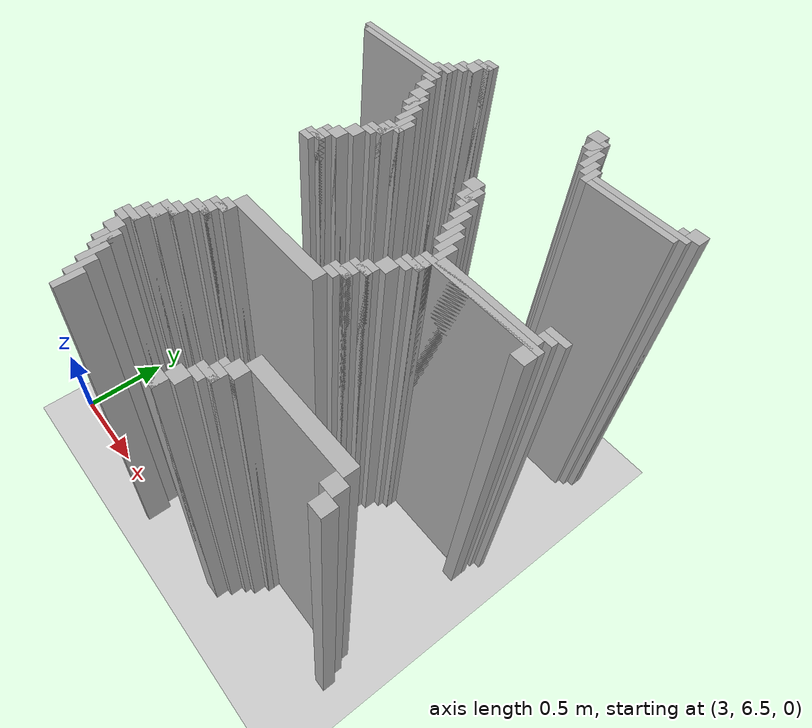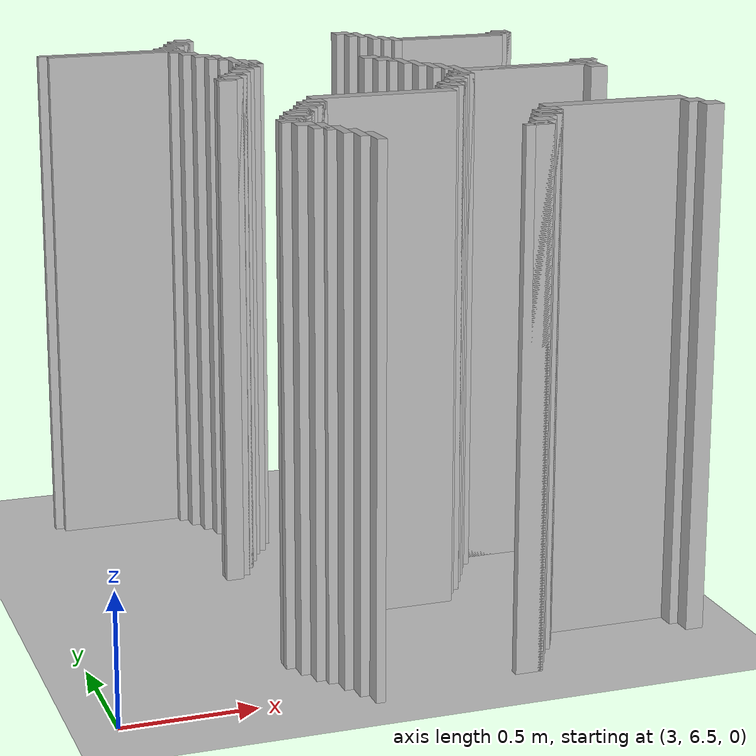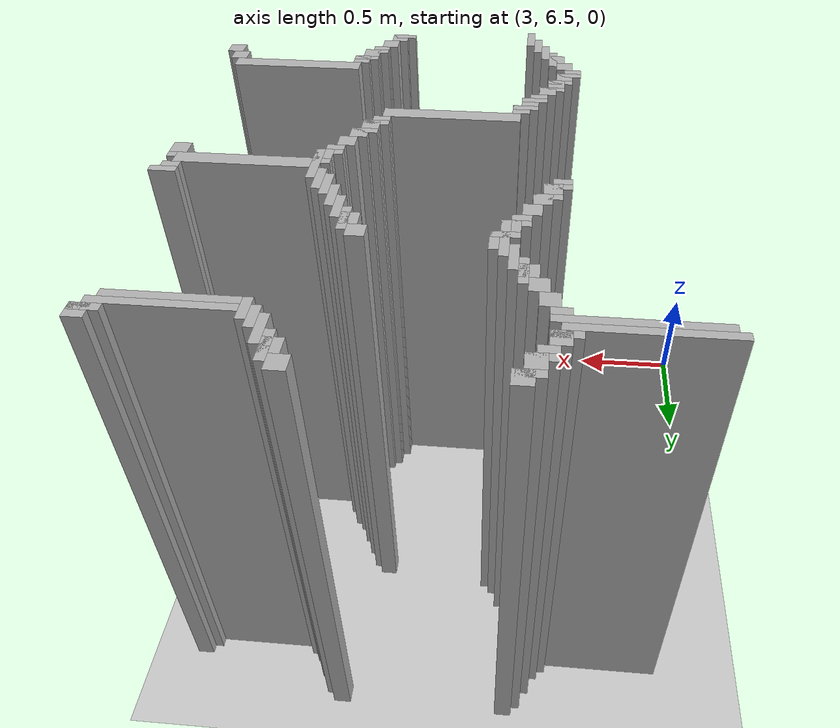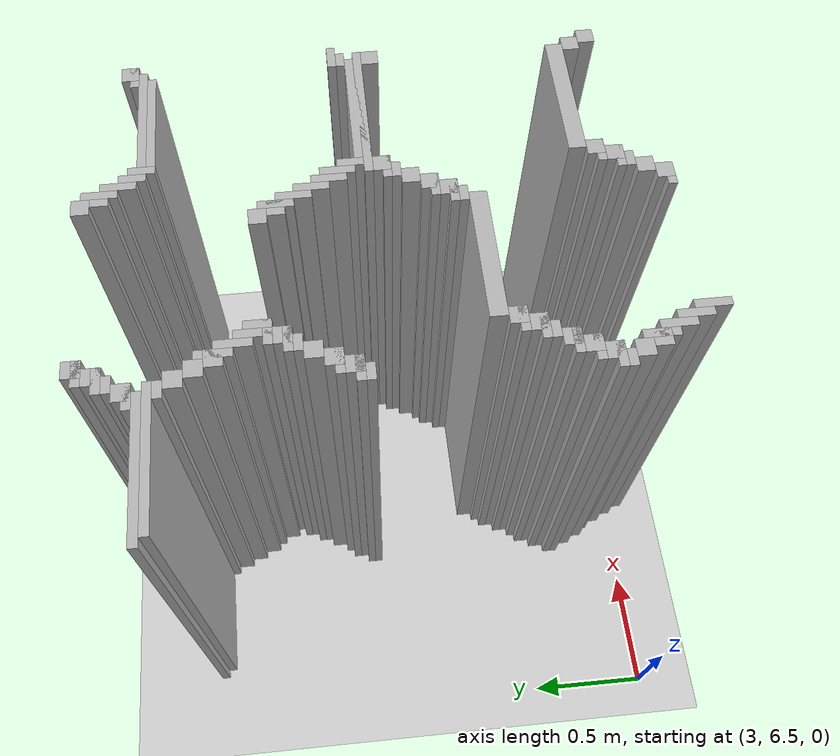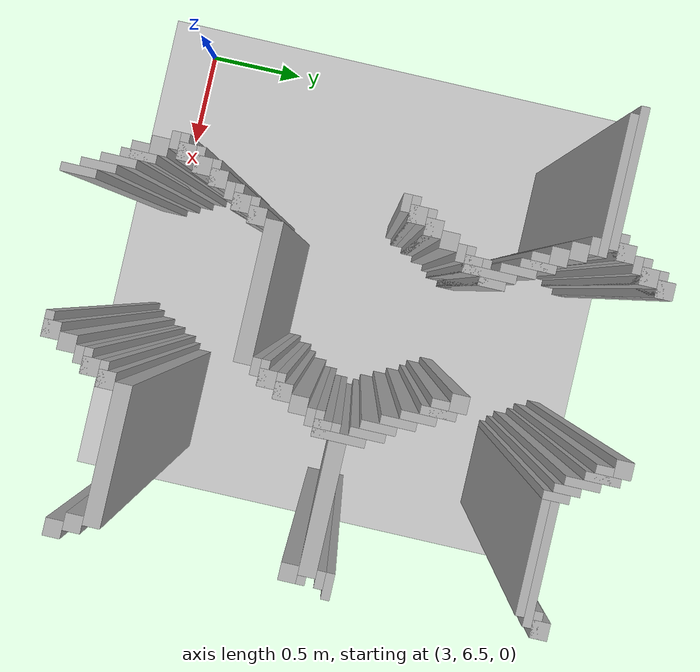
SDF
<sdf version="1.6">
 <world name="slam_world">
  <model name="ground_plane">
   <static>true</static>
   <link name="link">
    <collision name="collision">
     <geometry><plane><normal>0 0 1</normal><size>100 100</size></plane></geometry>
    </collision>
    <visual name="visual">
     <geometry><plane><normal>0 0 1</normal><size>100 100</size></plane></geometry>
     <material>
      <ambient>0.8 0.8 0.8 1</ambient>
      <diffuse>0.8 0.8 0.8 1</diffuse>
      <specular>0.8 0.8 0.8 1</specular>
     </material>
    </visual>
   </link>
  </model>
  <model name="wall_2924">
   <static>true</static>
   <pose>3.863109048723898 8.735498839907192 1.0 0 0 0</pose>
   <link name="link">
    <collision name="collision">
     <geometry><box><size>0.06960556844547564 0.06960556844547564 2.0</size></box></geometry>
    </collision>
    <visual name="visual">
     <geometry><box><size>0.06960556844547564 0.06960556844547564 2.0</size></box></geometry>
     <material><ambient>0.5 0.5 0.5 1</ambient><diffuse>0.7 0.7 0.7 1</diffuse></material>
    </visual>
   </link>
  </model>
  <model name="wall_2925">
   <static>true</static>
   <pose>4.559164733178654 8.735498839907192 1.0 0 0 0</pose>
   <link name="link">
    <collision name="collision">
     <geometry><box><size>0.06960556844547564 0.06960556844547564 2.0</size></box></geometry>
    </collision>
    <visual name="visual">
     <geometry><box><size>0.06960556844547564 0.06960556844547564 2.0</size></box></geometry>
     <material><ambient>0.5 0.5 0.5 1</ambient><diffuse>0.7 0.7 0.7 1</diffuse></material>
    </visual>
   </link>
  </model>
  <model name="wall_2939">
   <static>true</static>
   <pose>3.845707656612529 8.718097447795824 1.0 0 0 0</pose>
   <link name="link">
    <collision name="collision">
     <geometry><box><size>0.10440835266821345 0.03480278422273782 2.0</size></box></geometry>
    </collision>
    <visual name="visual">
     <geometry><box><size>0.10440835266821345 0.03480278422273782 2.0</size></box></geometry>
     <material><ambient>0.5 0.5 0.5 1</ambient><diffuse>0.7 0.7 0.7 1</diffuse></material>
    </visual>
   </link>
  </model>
  <model name="wall_2940">
   <static>true</static>
   <pose>4.611368909512761 8.665893271461716 1.0 0 0 0</pose>
   <link name="link">
    <collision name="collision">
     <geometry><box><size>0.03480278422273782 0.13921113689095127 2.0</size></box></geometry>
    </collision>
    <visual name="visual">
     <geometry><box><size>0.03480278422273782 0.13921113689095127 2.0</size></box></geometry>
     <material><ambient>0.5 0.5 0.5 1</ambient><diffuse>0.7 0.7 0.7 1</diffuse></material>
    </visual>
   </link>
  </model>
  <model name="wall_2953">
   <static>true</static>
   <pose>3.82830626450116 8.665893271461716 1.0 0 0 0</pose>
   <link name="link">
    <collision name="collision">
     <geometry><box><size>0.06960556844547564 0.06960556844547564 2.0</size></box></geometry>
    </collision>
    <visual name="visual">
     <geometry><box><size>0.06960556844547564 0.06960556844547564 2.0</size></box></geometry>
     <material><ambient>0.5 0.5 0.5 1</ambient><diffuse>0.7 0.7 0.7 1</diffuse></material>
    </visual>
   </link>
  </model>
  <model name="wall_2954">
   <static>true</static>
   <pose>4.593967517401392 8.665893271461716 1.0 0 0 0</pose>
   <link name="link">
    <collision name="collision">
     <geometry><box><size>0.06960556844547564 0.06960556844547564 2.0</size></box></geometry>
    </collision>
    <visual name="visual">
     <geometry><box><size>0.06960556844547564 0.06960556844547564 2.0</size></box></geometry>
     <material><ambient>0.5 0.5 0.5 1</ambient><diffuse>0.7 0.7 0.7 1</diffuse></material>
    </visual>
   </link>
  </model>
  <model name="wall_2964">
   <static>true</static>
   <pose>3.810904872389791 8.648491879350347 1.0 0 0 0</pose>
   <link name="link">
    <collision name="collision">
     <geometry><box><size>0.10440835266821345 0.03480278422273782 2.0</size></box></geometry>
    </collision>
    <visual name="visual">
     <geometry><box><size>0.10440835266821345 0.03480278422273782 2.0</size></box></geometry>
     <material><ambient>0.5 0.5 0.5 1</ambient><diffuse>0.7 0.7 0.7 1</diffuse></material>
    </visual>
   </link>
  </model>
  <model name="wall_2965">
   <static>true</static>
   <pose>4.646171693735498 8.596287703016241 1.0 0 0 0</pose>
   <link name="link">
    <collision name="collision">
     <geometry><box><size>0.03480278422273782 0.13921113689095127 2.0</size></box></geometry>
    </collision>
    <visual name="visual">
     <geometry><box><size>0.03480278422273782 0.13921113689095127 2.0</size></box></geometry>
     <material><ambient>0.5 0.5 0.5 1</ambient><diffuse>0.7 0.7 0.7 1</diffuse></material>
    </visual>
   </link>
  </model>
  <model name="wall_2978">
   <static>true</static>
   <pose>3.793503480278422 8.61368909512761 1.0 0 0 0</pose>
   <link name="link">
    <collision name="collision">
     <geometry><box><size>0.06960556844547564 0.03480278422273782 2.0</size></box></geometry>
    </collision>
    <visual name="visual">
     <geometry><box><size>0.06960556844547564 0.03480278422273782 2.0</size></box></geometry>
     <material><ambient>0.5 0.5 0.5 1</ambient><diffuse>0.7 0.7 0.7 1</diffuse></material>
    </visual>
   </link>
  </model>
  <model name="wall_2988">
   <static>true</static>
   <pose>3.7587006960556844 8.561484918793504 1.0 0 0 0</pose>
   <link name="link">
    <collision name="collision">
     <geometry><box><size>0.06960556844547564 0.06960556844547564 2.0</size></box></geometry>
    </collision>
    <visual name="visual">
     <geometry><box><size>0.06960556844547564 0.06960556844547564 2.0</size></box></geometry>
     <material><ambient>0.5 0.5 0.5 1</ambient><diffuse>0.7 0.7 0.7 1</diffuse></material>
    </visual>
   </link>
  </model>
  <model name="wall_2989">
   <static>true</static>
   <pose>4.6809744779582365 8.544083526682135 1.0 0 0 0</pose>
   <link name="link">
    <collision name="collision">
     <geometry><box><size>0.03480278422273782 0.10440835266821345 2.0</size></box></geometry>
    </collision>
    <visual name="visual">
     <geometry><box><size>0.03480278422273782 0.10440835266821345 2.0</size></box></geometry>
     <material><ambient>0.5 0.5 0.5 1</ambient><diffuse>0.7 0.7 0.7 1</diffuse></material>
    </visual>
   </link>
  </model>
  <model name="wall_2990">
   <static>true</static>
   <pose>5.220417633410673 8.561484918793504 1.0 0 0 0</pose>
   <link name="link">
    <collision name="collision">
     <geometry><box><size>0.06960556844547564 0.06960556844547564 2.0</size></box></geometry>
    </collision>
    <visual name="visual">
     <geometry><box><size>0.06960556844547564 0.06960556844547564 2.0</size></box></geometry>
     <material><ambient>0.5 0.5 0.5 1</ambient><diffuse>0.7 0.7 0.7 1</diffuse></material>
    </visual>
   </link>
  </model>
  <model name="wall_3003">
   <static>true</static>
   <pose>3.741299303944315 8.544083526682135 1.0 0 0 0</pose>
   <link name="link">
    <collision name="collision">
     <geometry><box><size>0.10440835266821345 0.03480278422273782 2.0</size></box></geometry>
    </collision>
    <visual name="visual">
     <geometry><box><size>0.10440835266821345 0.03480278422273782 2.0</size></box></geometry>
     <material><ambient>0.5 0.5 0.5 1</ambient><diffuse>0.7 0.7 0.7 1</diffuse></material>
    </visual>
   </link>
  </model>
  <model name="wall_3004">
   <static>true</static>
   <pose>4.715777262180974 8.509280742459396 1.0 0 0 0</pose>
   <link name="link">
    <collision name="collision">
     <geometry><box><size>0.03480278422273782 0.10440835266821345 2.0</size></box></geometry>
    </collision>
    <visual name="visual">
     <geometry><box><size>0.03480278422273782 0.10440835266821345 2.0</size></box></geometry>
     <material><ambient>0.5 0.5 0.5 1</ambient><diffuse>0.7 0.7 0.7 1</diffuse></material>
    </visual>
   </link>
  </model>
  <model name="wall_3005">
   <static>true</static>
   <pose>5.203016241299304 8.544083526682135 1.0 0 0 0</pose>
   <link name="link">
    <collision name="collision">
     <geometry><box><size>0.10440835266821345 0.03480278422273782 2.0</size></box></geometry>
    </collision>
    <visual name="visual">
     <geometry><box><size>0.10440835266821345 0.03480278422273782 2.0</size></box></geometry>
     <material><ambient>0.5 0.5 0.5 1</ambient><diffuse>0.7 0.7 0.7 1</diffuse></material>
    </visual>
   </link>
  </model>
  <model name="wall_3017">
   <static>true</static>
   <pose>3.480278422273782 8.509280742459396 1.0 0 0 0</pose>
   <link name="link">
    <collision name="collision">
     <geometry><box><size>0.5568445475638051 0.03480278422273782 2.0</size></box></geometry>
    </collision>
    <visual name="visual">
     <geometry><box><size>0.5568445475638051 0.03480278422273782 2.0</size></box></geometry>
     <material><ambient>0.5 0.5 0.5 1</ambient><diffuse>0.7 0.7 0.7 1</diffuse></material>
    </visual>
   </link>
  </model>
  <model name="wall_3018">
   <static>true</static>
   <pose>4.976798143851508 8.509280742459396 1.0 0 0 0</pose>
   <link name="link">
    <collision name="collision">
     <geometry><box><size>0.4872389791183295 0.03480278422273782 2.0</size></box></geometry>
    </collision>
    <visual name="visual">
     <geometry><box><size>0.4872389791183295 0.03480278422273782 2.0</size></box></geometry>
     <material><ambient>0.5 0.5 0.5 1</ambient><diffuse>0.7 0.7 0.7 1</diffuse></material>
    </visual>
   </link>
  </model>
  <model name="wall_3030">
   <static>true</static>
   <pose>3.51508120649652 8.474477958236658 1.0 0 0 0</pose>
   <link name="link">
    <collision name="collision">
     <geometry><box><size>0.5568445475638051 0.03480278422273782 2.0</size></box></geometry>
    </collision>
    <visual name="visual">
     <geometry><box><size>0.5568445475638051 0.03480278422273782 2.0</size></box></geometry>
     <material><ambient>0.5 0.5 0.5 1</ambient><diffuse>0.7 0.7 0.7 1</diffuse></material>
    </visual>
   </link>
  </model>
  <model name="wall_3031">
   <static>true</static>
   <pose>4.959396751740139 8.474477958236658 1.0 0 0 0</pose>
   <link name="link">
    <collision name="collision">
     <geometry><box><size>0.4524361948955916 0.03480278422273782 2.0</size></box></geometry>
    </collision>
    <visual name="visual">
     <geometry><box><size>0.4524361948955916 0.03480278422273782 2.0</size></box></geometry>
     <material><ambient>0.5 0.5 0.5 1</ambient><diffuse>0.7 0.7 0.7 1</diffuse></material>
    </visual>
   </link>
  </model>
  <model name="wall_3046">
   <static>true</static>
   <pose>3.7587006960556844 8.43967517401392 1.0 0 0 0</pose>
   <link name="link">
    <collision name="collision">
     <geometry><box><size>0.06960556844547564 0.03480278422273782 2.0</size></box></geometry>
    </collision>
    <visual name="visual">
     <geometry><box><size>0.06960556844547564 0.03480278422273782 2.0</size></box></geometry>
     <material><ambient>0.5 0.5 0.5 1</ambient><diffuse>0.7 0.7 0.7 1</diffuse></material>
    </visual>
   </link>
  </model>
  <model name="wall_3063">
   <static>true</static>
   <pose>3.793503480278422 8.387470997679815 1.0 0 0 0</pose>
   <link name="link">
    <collision name="collision">
     <geometry><box><size>0.06960556844547564 0.06960556844547564 2.0</size></box></geometry>
    </collision>
    <visual name="visual">
     <geometry><box><size>0.06960556844547564 0.06960556844547564 2.0</size></box></geometry>
     <material><ambient>0.5 0.5 0.5 1</ambient><diffuse>0.7 0.7 0.7 1</diffuse></material>
    </visual>
   </link>
  </model>
  <model name="wall_3080">
   <static>true</static>
   <pose>3.82830626450116 8.317865429234338 1.0 0 0 0</pose>
   <link name="link">
    <collision name="collision">
     <geometry><box><size>0.06960556844547564 0.06960556844547564 2.0</size></box></geometry>
    </collision>
    <visual name="visual">
     <geometry><box><size>0.06960556844547564 0.06960556844547564 2.0</size></box></geometry>
     <material><ambient>0.5 0.5 0.5 1</ambient><diffuse>0.7 0.7 0.7 1</diffuse></material>
    </visual>
   </link>
  </model>
  <model name="wall_3097">
   <static>true</static>
   <pose>3.8805104408352666 8.248259860788863 1.0 0 0 0</pose>
   <link name="link">
    <collision name="collision">
     <geometry><box><size>0.03480278422273782 0.13921113689095127 2.0</size></box></geometry>
    </collision>
    <visual name="visual">
     <geometry><box><size>0.03480278422273782 0.13921113689095127 2.0</size></box></geometry>
     <material><ambient>0.5 0.5 0.5 1</ambient><diffuse>0.7 0.7 0.7 1</diffuse></material>
    </visual>
   </link>
  </model>
  <model name="wall_3113">
   <static>true</static>
   <pose>3.863109048723898 8.248259860788863 1.0 0 0 0</pose>
   <link name="link">
    <collision name="collision">
     <geometry><box><size>0.06960556844547564 0.06960556844547564 2.0</size></box></geometry>
    </collision>
    <visual name="visual">
     <geometry><box><size>0.06960556844547564 0.06960556844547564 2.0</size></box></geometry>
     <material><ambient>0.5 0.5 0.5 1</ambient><diffuse>0.7 0.7 0.7 1</diffuse></material>
    </visual>
   </link>
  </model>
  <model name="wall_3127">
   <static>true</static>
   <pose>3.9153132250580045 8.178654292343387 1.0 0 0 0</pose>
   <link name="link">
    <collision name="collision">
     <geometry><box><size>0.03480278422273782 0.13921113689095127 2.0</size></box></geometry>
    </collision>
    <visual name="visual">
     <geometry><box><size>0.03480278422273782 0.13921113689095127 2.0</size></box></geometry>
     <material><ambient>0.5 0.5 0.5 1</ambient><diffuse>0.7 0.7 0.7 1</diffuse></material>
    </visual>
   </link>
  </model>
  <model name="wall_3153">
   <static>true</static>
   <pose>3.9501160092807424 8.074245939675174 1.0 0 0 0</pose>
   <link name="link">
    <collision name="collision">
     <geometry><box><size>0.03480278422273782 0.2088167053364269 2.0</size></box></geometry>
    </collision>
    <visual name="visual">
     <geometry><box><size>0.03480278422273782 0.2088167053364269 2.0</size></box></geometry>
     <material><ambient>0.5 0.5 0.5 1</ambient><diffuse>0.7 0.7 0.7 1</diffuse></material>
    </visual>
   </link>
  </model>
  <model name="wall_3167">
   <static>true</static>
   <pose>3.98491879350348 8.091647331786543 1.0 0 0 0</pose>
   <link name="link">
    <collision name="collision">
     <geometry><box><size>0.03480278422273782 0.10440835266821345 2.0</size></box></geometry>
    </collision>
    <visual name="visual">
     <geometry><box><size>0.03480278422273782 0.10440835266821345 2.0</size></box></geometry>
     <material><ambient>0.5 0.5 0.5 1</ambient><diffuse>0.7 0.7 0.7 1</diffuse></material>
    </visual>
   </link>
  </model>
  <model name="wall_3182">
   <static>true</static>
   <pose>4.454756380510441 8.074245939675174 1.0 0 0 0</pose>
   <link name="link">
    <collision name="collision">
     <geometry><box><size>0.06960556844547564 0.06960556844547564 2.0</size></box></geometry>
    </collision>
    <visual name="visual">
     <geometry><box><size>0.06960556844547564 0.06960556844547564 2.0</size></box></geometry>
     <material><ambient>0.5 0.5 0.5 1</ambient><diffuse>0.7 0.7 0.7 1</diffuse></material>
    </visual>
   </link>
  </model>
  <model name="wall_3194">
   <static>true</static>
   <pose>3.9501160092807424 8.056844547563804 1.0 0 0 0</pose>
   <link name="link">
    <collision name="collision">
     <geometry><box><size>0.10440835266821345 0.03480278422273782 2.0</size></box></geometry>
    </collision>
    <visual name="visual">
     <geometry><box><size>0.10440835266821345 0.03480278422273782 2.0</size></box></geometry>
     <material><ambient>0.5 0.5 0.5 1</ambient><diffuse>0.7 0.7 0.7 1</diffuse></material>
    </visual>
   </link>
  </model>
  <model name="wall_3195">
   <static>true</static>
   <pose>4.506960556844548 8.004640371229698 1.0 0 0 0</pose>
   <link name="link">
    <collision name="collision">
     <geometry><box><size>0.03480278422273782 0.13921113689095127 2.0</size></box></geometry>
    </collision>
    <visual name="visual">
     <geometry><box><size>0.03480278422273782 0.13921113689095127 2.0</size></box></geometry>
     <material><ambient>0.5 0.5 0.5 1</ambient><diffuse>0.7 0.7 0.7 1</diffuse></material>
    </visual>
   </link>
  </model>
  <model name="wall_3207">
   <static>true</static>
   <pose>3.932714617169373 8.004640371229698 1.0 0 0 0</pose>
   <link name="link">
    <collision name="collision">
     <geometry><box><size>0.06960556844547564 0.06960556844547564 2.0</size></box></geometry>
    </collision>
    <visual name="visual">
     <geometry><box><size>0.06960556844547564 0.06960556844547564 2.0</size></box></geometry>
     <material><ambient>0.5 0.5 0.5 1</ambient><diffuse>0.7 0.7 0.7 1</diffuse></material>
    </visual>
   </link>
  </model>
  <model name="wall_3208">
   <static>true</static>
   <pose>4.489559164733178 8.004640371229698 1.0 0 0 0</pose>
   <link name="link">
    <collision name="collision">
     <geometry><box><size>0.06960556844547564 0.06960556844547564 2.0</size></box></geometry>
    </collision>
    <visual name="visual">
     <geometry><box><size>0.06960556844547564 0.06960556844547564 2.0</size></box></geometry>
     <material><ambient>0.5 0.5 0.5 1</ambient><diffuse>0.7 0.7 0.7 1</diffuse></material>
    </visual>
   </link>
  </model>
  <model name="wall_3220">
   <static>true</static>
   <pose>3.9153132250580045 7.987238979118329 1.0 0 0 0</pose>
   <link name="link">
    <collision name="collision">
     <geometry><box><size>0.10440835266821345 0.03480278422273782 2.0</size></box></geometry>
    </collision>
    <visual name="visual">
     <geometry><box><size>0.10440835266821345 0.03480278422273782 2.0</size></box></geometry>
     <material><ambient>0.5 0.5 0.5 1</ambient><diffuse>0.7 0.7 0.7 1</diffuse></material>
    </visual>
   </link>
  </model>
  <model name="wall_3221">
   <static>true</static>
   <pose>4.541763341067285 7.935034802784222 1.0 0 0 0</pose>
   <link name="link">
    <collision name="collision">
     <geometry><box><size>0.03480278422273782 0.13921113689095127 2.0</size></box></geometry>
    </collision>
    <visual name="visual">
     <geometry><box><size>0.03480278422273782 0.13921113689095127 2.0</size></box></geometry>
     <material><ambient>0.5 0.5 0.5 1</ambient><diffuse>0.7 0.7 0.7 1</diffuse></material>
    </visual>
   </link>
  </model>
  <model name="wall_3232">
   <static>true</static>
   <pose>3.897911832946636 7.952436194895592 1.0 0 0 0</pose>
   <link name="link">
    <collision name="collision">
     <geometry><box><size>0.06960556844547564 0.03480278422273782 2.0</size></box></geometry>
    </collision>
    <visual name="visual">
     <geometry><box><size>0.06960556844547564 0.03480278422273782 2.0</size></box></geometry>
     <material><ambient>0.5 0.5 0.5 1</ambient><diffuse>0.7 0.7 0.7 1</diffuse></material>
    </visual>
   </link>
  </model>
  <model name="wall_3238">
   <static>true</static>
   <pose>3.863109048723898 7.900232018561485 1.0 0 0 0</pose>
   <link name="link">
    <collision name="collision">
     <geometry><box><size>0.06960556844547564 0.06960556844547564 2.0</size></box></geometry>
    </collision>
    <visual name="visual">
     <geometry><box><size>0.06960556844547564 0.06960556844547564 2.0</size></box></geometry>
     <material><ambient>0.5 0.5 0.5 1</ambient><diffuse>0.7 0.7 0.7 1</diffuse></material>
    </visual>
   </link>
  </model>
  <model name="wall_3239">
   <static>true</static>
   <pose>4.576566125290023 7.865429234338746 1.0 0 0 0</pose>
   <link name="link">
    <collision name="collision">
     <geometry><box><size>0.03480278422273782 0.13921113689095127 2.0</size></box></geometry>
    </collision>
    <visual name="visual">
     <geometry><box><size>0.03480278422273782 0.13921113689095127 2.0</size></box></geometry>
     <material><ambient>0.5 0.5 0.5 1</ambient><diffuse>0.7 0.7 0.7 1</diffuse></material>
    </visual>
   </link>
  </model>
  <model name="wall_3251">
   <static>true</static>
   <pose>3.82830626450116 7.830626450116009 1.0 0 0 0</pose>
   <link name="link">
    <collision name="collision">
     <geometry><box><size>0.06960556844547564 0.06960556844547564 2.0</size></box></geometry>
    </collision>
    <visual name="visual">
     <geometry><box><size>0.06960556844547564 0.06960556844547564 2.0</size></box></geometry>
     <material><ambient>0.5 0.5 0.5 1</ambient><diffuse>0.7 0.7 0.7 1</diffuse></material>
    </visual>
   </link>
  </model>
  <model name="wall_3252">
   <static>true</static>
   <pose>4.611368909512761 7.795823665893272 1.0 0 0 0</pose>
   <link name="link">
    <collision name="collision">
     <geometry><box><size>0.03480278422273782 0.13921113689095127 2.0</size></box></geometry>
    </collision>
    <visual name="visual">
     <geometry><box><size>0.03480278422273782 0.13921113689095127 2.0</size></box></geometry>
     <material><ambient>0.5 0.5 0.5 1</ambient><diffuse>0.7 0.7 0.7 1</diffuse></material>
    </visual>
   </link>
  </model>
  <model name="wall_3264">
   <static>true</static>
   <pose>3.810904872389791 7.81322505800464 1.0 0 0 0</pose>
   <link name="link">
    <collision name="collision">
     <geometry><box><size>0.10440835266821345 0.03480278422273782 2.0</size></box></geometry>
    </collision>
    <visual name="visual">
     <geometry><box><size>0.10440835266821345 0.03480278422273782 2.0</size></box></geometry>
     <material><ambient>0.5 0.5 0.5 1</ambient><diffuse>0.7 0.7 0.7 1</diffuse></material>
    </visual>
   </link>
  </model>
  <model name="wall_3265">
   <static>true</static>
   <pose>4.646171693735498 7.761020881670533 1.0 0 0 0</pose>
   <link name="link">
    <collision name="collision">
     <geometry><box><size>0.03480278422273782 0.13921113689095127 2.0</size></box></geometry>
    </collision>
    <visual name="visual">
     <geometry><box><size>0.03480278422273782 0.13921113689095127 2.0</size></box></geometry>
     <material><ambient>0.5 0.5 0.5 1</ambient><diffuse>0.7 0.7 0.7 1</diffuse></material>
    </visual>
   </link>
  </model>
  <model name="wall_3276">
   <static>true</static>
   <pose>3.793503480278422 7.761020881670533 1.0 0 0 0</pose>
   <link name="link">
    <collision name="collision">
     <geometry><box><size>0.06960556844547564 0.06960556844547564 2.0</size></box></geometry>
    </collision>
    <visual name="visual">
     <geometry><box><size>0.06960556844547564 0.06960556844547564 2.0</size></box></geometry>
     <material><ambient>0.5 0.5 0.5 1</ambient><diffuse>0.7 0.7 0.7 1</diffuse></material>
    </visual>
   </link>
  </model>
  <model name="wall_3282">
   <static>true</static>
   <pose>3.776102088167053 7.743619489559165 1.0 0 0 0</pose>
   <link name="link">
    <collision name="collision">
     <geometry><box><size>0.10440835266821345 0.03480278422273782 2.0</size></box></geometry>
    </collision>
    <visual name="visual">
     <geometry><box><size>0.10440835266821345 0.03480278422273782 2.0</size></box></geometry>
     <material><ambient>0.5 0.5 0.5 1</ambient><diffuse>0.7 0.7 0.7 1</diffuse></material>
    </visual>
   </link>
  </model>
  <model name="wall_3283">
   <static>true</static>
   <pose>4.6809744779582365 7.65661252900232 1.0 0 0 0</pose>
   <link name="link">
    <collision name="collision">
     <geometry><box><size>0.03480278422273782 0.2088167053364269 2.0</size></box></geometry>
    </collision>
    <visual name="visual">
     <geometry><box><size>0.03480278422273782 0.2088167053364269 2.0</size></box></geometry>
     <material><ambient>0.5 0.5 0.5 1</ambient><diffuse>0.7 0.7 0.7 1</diffuse></material>
    </visual>
   </link>
  </model>
  <model name="wall_3284">
   <static>true</static>
   <pose>5.237819025522041 7.743619489559165 1.0 0 0 0</pose>
   <link name="link">
    <collision name="collision">
     <geometry><box><size>0.10440835266821345 0.03480278422273782 2.0</size></box></geometry>
    </collision>
    <visual name="visual">
     <geometry><box><size>0.10440835266821345 0.03480278422273782 2.0</size></box></geometry>
     <material><ambient>0.5 0.5 0.5 1</ambient><diffuse>0.7 0.7 0.7 1</diffuse></material>
    </visual>
   </link>
  </model>
  <model name="wall_3294">
   <static>true</static>
   <pose>3.7587006960556844 7.708816705336426 1.0 0 0 0</pose>
   <link name="link">
    <collision name="collision">
     <geometry><box><size>0.06960556844547564 0.03480278422273782 2.0</size></box></geometry>
    </collision>
    <visual name="visual">
     <geometry><box><size>0.06960556844547564 0.03480278422273782 2.0</size></box></geometry>
     <material><ambient>0.5 0.5 0.5 1</ambient><diffuse>0.7 0.7 0.7 1</diffuse></material>
    </visual>
   </link>
  </model>
  <model name="wall_3295">
   <static>true</static>
   <pose>5.220417633410673 7.708816705336426 1.0 0 0 0</pose>
   <link name="link">
    <collision name="collision">
     <geometry><box><size>0.06960556844547564 0.03480278422273782 2.0</size></box></geometry>
    </collision>
    <visual name="visual">
     <geometry><box><size>0.06960556844547564 0.03480278422273782 2.0</size></box></geometry>
     <material><ambient>0.5 0.5 0.5 1</ambient><diffuse>0.7 0.7 0.7 1</diffuse></material>
    </visual>
   </link>
  </model>
  <model name="wall_3302">
   <static>true</static>
   <pose>4.959396751740139 7.65661252900232 1.0 0 0 0</pose>
   <link name="link">
    <collision name="collision">
     <geometry><box><size>0.5220417633410672 0.06960556844547564 2.0</size></box></geometry>
    </collision>
    <visual name="visual">
     <geometry><box><size>0.5220417633410672 0.06960556844547564 2.0</size></box></geometry>
     <material><ambient>0.5 0.5 0.5 1</ambient><diffuse>0.7 0.7 0.7 1</diffuse></material>
    </visual>
   </link>
  </model>
  <model name="wall_3315">
   <static>true</static>
   <pose>4.94199535962877 7.6392111368909505 1.0 0 0 0</pose>
   <link name="link">
    <collision name="collision">
     <geometry><box><size>0.6264501160092807 0.03480278422273782 2.0</size></box></geometry>
    </collision>
    <visual name="visual">
     <geometry><box><size>0.6264501160092807 0.03480278422273782 2.0</size></box></geometry>
     <material><ambient>0.5 0.5 0.5 1</ambient><diffuse>0.7 0.7 0.7 1</diffuse></material>
    </visual>
   </link>
  </model>
  <model name="wall_3328">
   <static>true</static>
   <pose>4.663573085846868 7.587006960556844 1.0 0 0 0</pose>
   <link name="link">
    <collision name="collision">
     <geometry><box><size>0.06960556844547564 0.06960556844547564 2.0</size></box></geometry>
    </collision>
    <visual name="visual">
     <geometry><box><size>0.06960556844547564 0.06960556844547564 2.0</size></box></geometry>
     <material><ambient>0.5 0.5 0.5 1</ambient><diffuse>0.7 0.7 0.7 1</diffuse></material>
    </visual>
   </link>
  </model>
  <model name="wall_3329">
   <static>true</static>
   <pose>5.220417633410673 7.587006960556844 1.0 0 0 0</pose>
   <link name="link">
    <collision name="collision">
     <geometry><box><size>0.06960556844547564 0.06960556844547564 2.0</size></box></geometry>
    </collision>
    <visual name="visual">
     <geometry><box><size>0.06960556844547564 0.06960556844547564 2.0</size></box></geometry>
     <material><ambient>0.5 0.5 0.5 1</ambient><diffuse>0.7 0.7 0.7 1</diffuse></material>
    </visual>
   </link>
  </model>
  <model name="wall_3343">
   <static>true</static>
   <pose>4.646171693735498 7.569605568445476 1.0 0 0 0</pose>
   <link name="link">
    <collision name="collision">
     <geometry><box><size>0.10440835266821345 0.03480278422273782 2.0</size></box></geometry>
    </collision>
    <visual name="visual">
     <geometry><box><size>0.10440835266821345 0.03480278422273782 2.0</size></box></geometry>
     <material><ambient>0.5 0.5 0.5 1</ambient><diffuse>0.7 0.7 0.7 1</diffuse></material>
    </visual>
   </link>
  </model>
  <model name="wall_3357">
   <static>true</static>
   <pose>4.6287703016241295 7.534802784222737 1.0 0 0 0</pose>
   <link name="link">
    <collision name="collision">
     <geometry><box><size>0.06960556844547564 0.03480278422273782 2.0</size></box></geometry>
    </collision>
    <visual name="visual">
     <geometry><box><size>0.06960556844547564 0.03480278422273782 2.0</size></box></geometry>
     <material><ambient>0.5 0.5 0.5 1</ambient><diffuse>0.7 0.7 0.7 1</diffuse></material>
    </visual>
   </link>
  </model>
  <model name="wall_3368">
   <static>true</static>
   <pose>4.593967517401392 7.48259860788863 1.0 0 0 0</pose>
   <link name="link">
    <collision name="collision">
     <geometry><box><size>0.06960556844547564 0.06960556844547564 2.0</size></box></geometry>
    </collision>
    <visual name="visual">
     <geometry><box><size>0.06960556844547564 0.06960556844547564 2.0</size></box></geometry>
     <material><ambient>0.5 0.5 0.5 1</ambient><diffuse>0.7 0.7 0.7 1</diffuse></material>
    </visual>
   </link>
  </model>
  <model name="wall_3383">
   <static>true</static>
   <pose>4.559164733178654 7.412993039443156 1.0 0 0 0</pose>
   <link name="link">
    <collision name="collision">
     <geometry><box><size>0.06960556844547564 0.06960556844547564 2.0</size></box></geometry>
    </collision>
    <visual name="visual">
     <geometry><box><size>0.06960556844547564 0.06960556844547564 2.0</size></box></geometry>
     <material><ambient>0.5 0.5 0.5 1</ambient><diffuse>0.7 0.7 0.7 1</diffuse></material>
    </visual>
   </link>
  </model>
  <model name="wall_3398">
   <static>true</static>
   <pose>4.541763341067285 7.395591647331786 1.0 0 0 0</pose>
   <link name="link">
    <collision name="collision">
     <geometry><box><size>0.10440835266821345 0.03480278422273782 2.0</size></box></geometry>
    </collision>
    <visual name="visual">
     <geometry><box><size>0.10440835266821345 0.03480278422273782 2.0</size></box></geometry>
     <material><ambient>0.5 0.5 0.5 1</ambient><diffuse>0.7 0.7 0.7 1</diffuse></material>
    </visual>
   </link>
  </model>
  <model name="wall_3411">
   <static>true</static>
   <pose>4.524361948955916 7.34338747099768 1.0 0 0 0</pose>
   <link name="link">
    <collision name="collision">
     <geometry><box><size>0.06960556844547564 0.06960556844547564 2.0</size></box></geometry>
    </collision>
    <visual name="visual">
     <geometry><box><size>0.06960556844547564 0.06960556844547564 2.0</size></box></geometry>
     <material><ambient>0.5 0.5 0.5 1</ambient><diffuse>0.7 0.7 0.7 1</diffuse></material>
    </visual>
   </link>
  </model>
  <model name="wall_3420">
   <static>true</static>
   <pose>4.506960556844548 7.32598607888631 1.0 0 0 0</pose>
   <link name="link">
    <collision name="collision">
     <geometry><box><size>0.10440835266821345 0.03480278422273782 2.0</size></box></geometry>
    </collision>
    <visual name="visual">
     <geometry><box><size>0.10440835266821345 0.03480278422273782 2.0</size></box></geometry>
     <material><ambient>0.5 0.5 0.5 1</ambient><diffuse>0.7 0.7 0.7 1</diffuse></material>
    </visual>
   </link>
  </model>
  <model name="wall_3433">
   <static>true</static>
   <pose>4.489559164733178 7.291183294663573 1.0 0 0 0</pose>
   <link name="link">
    <collision name="collision">
     <geometry><box><size>0.06960556844547564 0.03480278422273782 2.0</size></box></geometry>
    </collision>
    <visual name="visual">
     <geometry><box><size>0.06960556844547564 0.03480278422273782 2.0</size></box></geometry>
     <material><ambient>0.5 0.5 0.5 1</ambient><diffuse>0.7 0.7 0.7 1</diffuse></material>
    </visual>
   </link>
  </model>
  <model name="wall_3441">
   <static>true</static>
   <pose>4.211136890951276 7.238979118329466 1.0 0 0 0</pose>
   <link name="link">
    <collision name="collision">
     <geometry><box><size>0.5568445475638051 0.06960556844547564 2.0</size></box></geometry>
    </collision>
    <visual name="visual">
     <geometry><box><size>0.5568445475638051 0.06960556844547564 2.0</size></box></geometry>
     <material><ambient>0.5 0.5 0.5 1</ambient><diffuse>0.7 0.7 0.7 1</diffuse></material>
    </visual>
   </link>
  </model>
  <model name="wall_3452">
   <static>true</static>
   <pose>3.932714617169373 7.16937354988399 1.0 0 0 0</pose>
   <link name="link">
    <collision name="collision">
     <geometry><box><size>0.06960556844547564 0.06960556844547564 2.0</size></box></geometry>
    </collision>
    <visual name="visual">
     <geometry><box><size>0.06960556844547564 0.06960556844547564 2.0</size></box></geometry>
     <material><ambient>0.5 0.5 0.5 1</ambient><diffuse>0.7 0.7 0.7 1</diffuse></material>
    </visual>
   </link>
  </model>
  <model name="wall_3465">
   <static>true</static>
   <pose>3.9153132250580045 7.151972157772621 1.0 0 0 0</pose>
   <link name="link">
    <collision name="collision">
     <geometry><box><size>0.10440835266821345 0.03480278422273782 2.0</size></box></geometry>
    </collision>
    <visual name="visual">
     <geometry><box><size>0.10440835266821345 0.03480278422273782 2.0</size></box></geometry>
     <material><ambient>0.5 0.5 0.5 1</ambient><diffuse>0.7 0.7 0.7 1</diffuse></material>
    </visual>
   </link>
  </model>
  <model name="wall_3478">
   <static>true</static>
   <pose>3.897911832946636 7.099767981438514 1.0 0 0 0</pose>
   <link name="link">
    <collision name="collision">
     <geometry><box><size>0.06960556844547564 0.06960556844547564 2.0</size></box></geometry>
    </collision>
    <visual name="visual">
     <geometry><box><size>0.06960556844547564 0.06960556844547564 2.0</size></box></geometry>
     <material><ambient>0.5 0.5 0.5 1</ambient><diffuse>0.7 0.7 0.7 1</diffuse></material>
    </visual>
   </link>
  </model>
  <model name="wall_3491">
   <static>true</static>
   <pose>3.8805104408352666 7.082366589327146 1.0 0 0 0</pose>
   <link name="link">
    <collision name="collision">
     <geometry><box><size>0.10440835266821345 0.03480278422273782 2.0</size></box></geometry>
    </collision>
    <visual name="visual">
     <geometry><box><size>0.10440835266821345 0.03480278422273782 2.0</size></box></geometry>
     <material><ambient>0.5 0.5 0.5 1</ambient><diffuse>0.7 0.7 0.7 1</diffuse></material>
    </visual>
   </link>
  </model>
  <model name="wall_3502">
   <static>true</static>
   <pose>3.863109048723898 7.047563805104408 1.0 0 0 0</pose>
   <link name="link">
    <collision name="collision">
     <geometry><box><size>0.06960556844547564 0.03480278422273782 2.0</size></box></geometry>
    </collision>
    <visual name="visual">
     <geometry><box><size>0.06960556844547564 0.03480278422273782 2.0</size></box></geometry>
     <material><ambient>0.5 0.5 0.5 1</ambient><diffuse>0.7 0.7 0.7 1</diffuse></material>
    </visual>
   </link>
  </model>
  <model name="wall_3508">
   <static>true</static>
   <pose>3.82830626450116 6.995359628770301 1.0 0 0 0</pose>
   <link name="link">
    <collision name="collision">
     <geometry><box><size>0.06960556844547564 0.06960556844547564 2.0</size></box></geometry>
    </collision>
    <visual name="visual">
     <geometry><box><size>0.06960556844547564 0.06960556844547564 2.0</size></box></geometry>
     <material><ambient>0.5 0.5 0.5 1</ambient><diffuse>0.7 0.7 0.7 1</diffuse></material>
    </visual>
   </link>
  </model>
  <model name="wall_3519">
   <static>true</static>
   <pose>3.810904872389791 6.977958236658933 1.0 0 0 0</pose>
   <link name="link">
    <collision name="collision">
     <geometry><box><size>0.10440835266821345 0.03480278422273782 2.0</size></box></geometry>
    </collision>
    <visual name="visual">
     <geometry><box><size>0.10440835266821345 0.03480278422273782 2.0</size></box></geometry>
     <material><ambient>0.5 0.5 0.5 1</ambient><diffuse>0.7 0.7 0.7 1</diffuse></material>
    </visual>
   </link>
  </model>
  <model name="wall_3525">
   <static>true</static>
   <pose>3.793503480278422 6.9257540603248255 1.0 0 0 0</pose>
   <link name="link">
    <collision name="collision">
     <geometry><box><size>0.06960556844547564 0.06960556844547564 2.0</size></box></geometry>
    </collision>
    <visual name="visual">
     <geometry><box><size>0.06960556844547564 0.06960556844547564 2.0</size></box></geometry>
     <material><ambient>0.5 0.5 0.5 1</ambient><diffuse>0.7 0.7 0.7 1</diffuse></material>
    </visual>
   </link>
  </model>
  <model name="wall_3538">
   <static>true</static>
   <pose>3.776102088167053 6.908352668213457 1.0 0 0 0</pose>
   <link name="link">
    <collision name="collision">
     <geometry><box><size>0.10440835266821345 0.03480278422273782 2.0</size></box></geometry>
    </collision>
    <visual name="visual">
     <geometry><box><size>0.10440835266821345 0.03480278422273782 2.0</size></box></geometry>
     <material><ambient>0.5 0.5 0.5 1</ambient><diffuse>0.7 0.7 0.7 1</diffuse></material>
    </visual>
   </link>
  </model>
  <model name="wall_3549">
   <static>true</static>
   <pose>3.7587006960556844 6.85614849187935 1.0 0 0 0</pose>
   <link name="link">
    <collision name="collision">
     <geometry><box><size>0.06960556844547564 0.06960556844547564 2.0</size></box></geometry>
    </collision>
    <visual name="visual">
     <geometry><box><size>0.06960556844547564 0.06960556844547564 2.0</size></box></geometry>
     <material><ambient>0.5 0.5 0.5 1</ambient><diffuse>0.7 0.7 0.7 1</diffuse></material>
    </visual>
   </link>
  </model>
  <model name="wall_3557">
   <static>true</static>
   <pose>3.741299303944315 6.838747099767981 1.0 0 0 0</pose>
   <link name="link">
    <collision name="collision">
     <geometry><box><size>0.10440835266821345 0.03480278422273782 2.0</size></box></geometry>
    </collision>
    <visual name="visual">
     <geometry><box><size>0.10440835266821345 0.03480278422273782 2.0</size></box></geometry>
     <material><ambient>0.5 0.5 0.5 1</ambient><diffuse>0.7 0.7 0.7 1</diffuse></material>
    </visual>
   </link>
  </model>
  <model name="wall_3558">
   <static>true</static>
   <pose>4.94199535962877 6.821345707656612 1.0 0 0 0</pose>
   <link name="link">
    <collision name="collision">
     <geometry><box><size>0.5568445475638051 0.06960556844547564 2.0</size></box></geometry>
    </collision>
    <visual name="visual">
     <geometry><box><size>0.5568445475638051 0.06960556844547564 2.0</size></box></geometry>
     <material><ambient>0.5 0.5 0.5 1</ambient><diffuse>0.7 0.7 0.7 1</diffuse></material>
    </visual>
   </link>
  </model>
  <model name="wall_3568">
   <static>true</static>
   <pose>3.7238979118329465 6.803944315545244 1.0 0 0 0</pose>
   <link name="link">
    <collision name="collision">
     <geometry><box><size>0.06960556844547564 0.03480278422273782 2.0</size></box></geometry>
    </collision>
    <visual name="visual">
     <geometry><box><size>0.06960556844547564 0.03480278422273782 2.0</size></box></geometry>
     <material><ambient>0.5 0.5 0.5 1</ambient><diffuse>0.7 0.7 0.7 1</diffuse></material>
    </visual>
   </link>
  </model>
  <model name="wall_3577">
   <static>true</static>
   <pose>3.7587006960556844 6.751740139211137 1.0 0 0 0</pose>
   <link name="link">
    <collision name="collision">
     <geometry><box><size>0.06960556844547564 0.06960556844547564 2.0</size></box></geometry>
    </collision>
    <visual name="visual">
     <geometry><box><size>0.06960556844547564 0.06960556844547564 2.0</size></box></geometry>
     <material><ambient>0.5 0.5 0.5 1</ambient><diffuse>0.7 0.7 0.7 1</diffuse></material>
    </visual>
   </link>
  </model>
  <model name="wall_3578">
   <static>true</static>
   <pose>4.663573085846868 6.751740139211137 1.0 0 0 0</pose>
   <link name="link">
    <collision name="collision">
     <geometry><box><size>0.06960556844547564 0.06960556844547564 2.0</size></box></geometry>
    </collision>
    <visual name="visual">
     <geometry><box><size>0.06960556844547564 0.06960556844547564 2.0</size></box></geometry>
     <material><ambient>0.5 0.5 0.5 1</ambient><diffuse>0.7 0.7 0.7 1</diffuse></material>
    </visual>
   </link>
  </model>
  <model name="wall_3579">
   <static>true</static>
   <pose>5.220417633410673 6.751740139211137 1.0 0 0 0</pose>
   <link name="link">
    <collision name="collision">
     <geometry><box><size>0.06960556844547564 0.06960556844547564 2.0</size></box></geometry>
    </collision>
    <visual name="visual">
     <geometry><box><size>0.06960556844547564 0.06960556844547564 2.0</size></box></geometry>
     <material><ambient>0.5 0.5 0.5 1</ambient><diffuse>0.7 0.7 0.7 1</diffuse></material>
    </visual>
   </link>
  </model>
  <model name="wall_3591">
   <static>true</static>
   <pose>3.810904872389791 6.682134570765661 1.0 0 0 0</pose>
   <link name="link">
    <collision name="collision">
     <geometry><box><size>0.03480278422273782 0.13921113689095127 2.0</size></box></geometry>
    </collision>
    <visual name="visual">
     <geometry><box><size>0.03480278422273782 0.13921113689095127 2.0</size></box></geometry>
     <material><ambient>0.5 0.5 0.5 1</ambient><diffuse>0.7 0.7 0.7 1</diffuse></material>
    </visual>
   </link>
  </model>
  <model name="wall_3592">
   <static>true</static>
   <pose>4.646171693735498 6.734338747099768 1.0 0 0 0</pose>
   <link name="link">
    <collision name="collision">
     <geometry><box><size>0.10440835266821345 0.03480278422273782 2.0</size></box></geometry>
    </collision>
    <visual name="visual">
     <geometry><box><size>0.10440835266821345 0.03480278422273782 2.0</size></box></geometry>
     <material><ambient>0.5 0.5 0.5 1</ambient><diffuse>0.7 0.7 0.7 1</diffuse></material>
    </visual>
   </link>
  </model>
  <model name="wall_3605">
   <static>true</static>
   <pose>3.793503480278422 6.682134570765661 1.0 0 0 0</pose>
   <link name="link">
    <collision name="collision">
     <geometry><box><size>0.06960556844547564 0.06960556844547564 2.0</size></box></geometry>
    </collision>
    <visual name="visual">
     <geometry><box><size>0.06960556844547564 0.06960556844547564 2.0</size></box></geometry>
     <material><ambient>0.5 0.5 0.5 1</ambient><diffuse>0.7 0.7 0.7 1</diffuse></material>
    </visual>
   </link>
  </model>
  <model name="wall_3606">
   <static>true</static>
   <pose>4.6287703016241295 6.682134570765661 1.0 0 0 0</pose>
   <link name="link">
    <collision name="collision">
     <geometry><box><size>0.06960556844547564 0.06960556844547564 2.0</size></box></geometry>
    </collision>
    <visual name="visual">
     <geometry><box><size>0.06960556844547564 0.06960556844547564 2.0</size></box></geometry>
     <material><ambient>0.5 0.5 0.5 1</ambient><diffuse>0.7 0.7 0.7 1</diffuse></material>
    </visual>
   </link>
  </model>
  <model name="wall_3607">
   <static>true</static>
   <pose>5.25522041763341 6.682134570765661 1.0 0 0 0</pose>
   <link name="link">
    <collision name="collision">
     <geometry><box><size>0.06960556844547564 0.06960556844547564 2.0</size></box></geometry>
    </collision>
    <visual name="visual">
     <geometry><box><size>0.06960556844547564 0.06960556844547564 2.0</size></box></geometry>
     <material><ambient>0.5 0.5 0.5 1</ambient><diffuse>0.7 0.7 0.7 1</diffuse></material>
    </visual>
   </link>
  </model>
  <model name="wall_3619">
   <static>true</static>
   <pose>3.845707656612529 6.612529002320185 1.0 0 0 0</pose>
   <link name="link">
    <collision name="collision">
     <geometry><box><size>0.03480278422273782 0.13921113689095127 2.0</size></box></geometry>
    </collision>
    <visual name="visual">
     <geometry><box><size>0.03480278422273782 0.13921113689095127 2.0</size></box></geometry>
     <material><ambient>0.5 0.5 0.5 1</ambient><diffuse>0.7 0.7 0.7 1</diffuse></material>
    </visual>
   </link>
  </model>
  <model name="wall_3620">
   <static>true</static>
   <pose>4.611368909512761 6.664733178654292 1.0 0 0 0</pose>
   <link name="link">
    <collision name="collision">
     <geometry><box><size>0.10440835266821345 0.03480278422273782 2.0</size></box></geometry>
    </collision>
    <visual name="visual">
     <geometry><box><size>0.10440835266821345 0.03480278422273782 2.0</size></box></geometry>
     <material><ambient>0.5 0.5 0.5 1</ambient><diffuse>0.7 0.7 0.7 1</diffuse></material>
    </visual>
   </link>
  </model>
  <model name="wall_3631">
   <static>true</static>
   <pose>4.593967517401392 6.629930394431554 1.0 0 0 0</pose>
   <link name="link">
    <collision name="collision">
     <geometry><box><size>0.06960556844547564 0.03480278422273782 2.0</size></box></geometry>
    </collision>
    <visual name="visual">
     <geometry><box><size>0.06960556844547564 0.03480278422273782 2.0</size></box></geometry>
     <material><ambient>0.5 0.5 0.5 1</ambient><diffuse>0.7 0.7 0.7 1</diffuse></material>
    </visual>
   </link>
  </model>
  <model name="wall_3641">
   <static>true</static>
   <pose>3.8805104408352666 6.5429234338747095 1.0 0 0 0</pose>
   <link name="link">
    <collision name="collision">
     <geometry><box><size>0.03480278422273782 0.13921113689095127 2.0</size></box></geometry>
    </collision>
    <visual name="visual">
     <geometry><box><size>0.03480278422273782 0.13921113689095127 2.0</size></box></geometry>
     <material><ambient>0.5 0.5 0.5 1</ambient><diffuse>0.7 0.7 0.7 1</diffuse></material>
    </visual>
   </link>
  </model>
  <model name="wall_3642">
   <static>true</static>
   <pose>4.559164733178654 6.577726218097448 1.0 0 0 0</pose>
   <link name="link">
    <collision name="collision">
     <geometry><box><size>0.06960556844547564 0.06960556844547564 2.0</size></box></geometry>
    </collision>
    <visual name="visual">
     <geometry><box><size>0.06960556844547564 0.06960556844547564 2.0</size></box></geometry>
     <material><ambient>0.5 0.5 0.5 1</ambient><diffuse>0.7 0.7 0.7 1</diffuse></material>
    </visual>
   </link>
  </model>
  <model name="wall_3655">
   <static>true</static>
   <pose>3.9153132250580045 6.473317865429234 1.0 0 0 0</pose>
   <link name="link">
    <collision name="collision">
     <geometry><box><size>0.03480278422273782 0.13921113689095127 2.0</size></box></geometry>
    </collision>
    <visual name="visual">
     <geometry><box><size>0.03480278422273782 0.13921113689095127 2.0</size></box></geometry>
     <material><ambient>0.5 0.5 0.5 1</ambient><diffuse>0.7 0.7 0.7 1</diffuse></material>
    </visual>
   </link>
  </model>
  <model name="wall_3656">
   <static>true</static>
   <pose>4.524361948955916 6.508120649651972 1.0 0 0 0</pose>
   <link name="link">
    <collision name="collision">
     <geometry><box><size>0.06960556844547564 0.06960556844547564 2.0</size></box></geometry>
    </collision>
    <visual name="visual">
     <geometry><box><size>0.06960556844547564 0.06960556844547564 2.0</size></box></geometry>
     <material><ambient>0.5 0.5 0.5 1</ambient><diffuse>0.7 0.7 0.7 1</diffuse></material>
    </visual>
   </link>
  </model>
  <model name="wall_3670">
   <static>true</static>
   <pose>4.506960556844548 6.490719257540603 1.0 0 0 0</pose>
   <link name="link">
    <collision name="collision">
     <geometry><box><size>0.10440835266821345 0.03480278422273782 2.0</size></box></geometry>
    </collision>
    <visual name="visual">
     <geometry><box><size>0.10440835266821345 0.03480278422273782 2.0</size></box></geometry>
     <material><ambient>0.5 0.5 0.5 1</ambient><diffuse>0.7 0.7 0.7 1</diffuse></material>
    </visual>
   </link>
  </model>
 </world>
</sdf>
